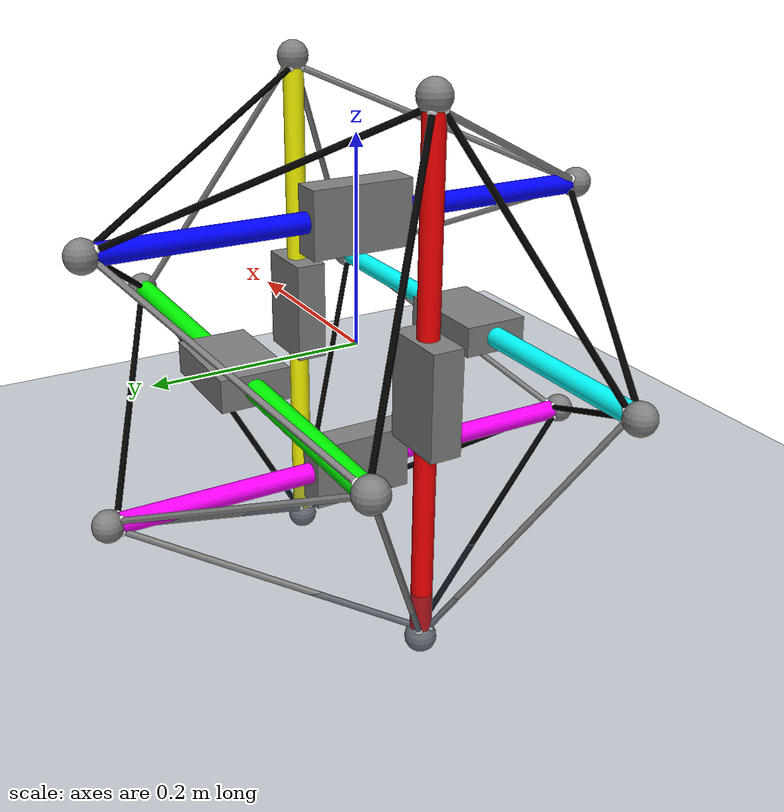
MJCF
<mujoco model="scene">
  <include file="tensegrity_real_model.xml"/>

  <visual>
    <headlight diffuse="0.6 0.6 0.6" ambient="0.5 0.5 0.3" specular="0 0 0"/>
    </visual>

    <asset>
      <texture type="skybox" builtin="gradient" rgb1="0.3 0.5 0.7" rgb2="0.1 0.1 0.1" width="512" height="3072"/>
      <texture type="2d" name="groundplane" builtin="checker" mark="edge" rgb1="0.2 0.3 0.4" rgb2="0.1 0.2 0.3" markrgb="0.8 0.8 0.8" width="300" height="300"/>
      <material name="groundplane" texture="groundplane" texuniform="true" texrepeat="5 5"
        reflectance="0.2"/>
    </asset>

    <worldbody>
      <light pos="0 0 1.5" dir="0 0 -1" directional="true"/>
      <geom name="floor" pos="0 0 -0.2" size="0 0 0.05" type="plane" material="groundplane"/>
    </worldbody>

    <contact>
      <pair geom1="floor" geom2="link1" friction="1.0 1.0"/>
      <pair geom1="floor" geom2="link2" friction="1.0 1.0"/>
      <pair geom1="floor" geom2="link3" friction="1.0 1.0"/>
      <pair geom1="floor" geom2="link4" friction="1.0 1.0"/>
      <pair geom1="floor" geom2="link5" friction="1.0 1.0"/>
      <pair geom1="floor" geom2="link6" friction="1.0 1.0"/>
      <pair geom1="floor" geom2="sphere_1t" friction="1.0 1.0"/>
      <pair geom1="floor" geom2="sphere_1b" friction="1.0 1.0"/>
      <pair geom1="floor" geom2="sphere_2t" friction="1.0 1.0"/>
      <pair geom1="floor" geom2="sphere_2b" friction="1.0 1.0"/>
      <pair geom1="floor" geom2="sphere_3t" friction="1.0 1.0"/>
      <pair geom1="floor" geom2="sphere_3b" friction="1.0 1.0"/>
      <pair geom1="floor" geom2="sphere_4t" friction="1.0 1.0"/>
      <pair geom1="floor" geom2="sphere_4b" friction="1.0 1.0"/>
      <pair geom1="floor" geom2="sphere_5t" friction="1.0 1.0"/>
      <pair geom1="floor" geom2="sphere_5b" friction="1.0 1.0"/>
      <pair geom1="floor" geom2="sphere_6t" friction="1.0 1.0"/>
      <pair geom1="floor" geom2="sphere_6b" friction="1.0 1.0"/>
      <pair geom1="link1" geom2="link2"/>
      <pair geom1="link1" geom2="link3"/>
      <pair geom1="link1" geom2="link4"/>
      <pair geom1="link1" geom2="link5"/>
      <pair geom1="link1" geom2="link6"/>
      <pair geom1="link2" geom2="link3"/>
      <pair geom1="link2" geom2="link4"/>
      <pair geom1="link2" geom2="link5"/>
      <pair geom1="link2" geom2="link6"/>
      <pair geom1="link3" geom2="link4"/>
      <pair geom1="link3" geom2="link5"/>
      <pair geom1="link3" geom2="link6"/>
      <pair geom1="link4" geom2="link5"/>
      <pair geom1="link4" geom2="link6"/>
      <pair geom1="link5" geom2="link6"/>
    </contact>

  </mujoco>

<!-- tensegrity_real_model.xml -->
<mujoco model="tensegrity">
  <option timestep="0.002" collision="predefined"/>
  <default>
    <site size="0.005" rgba="1 1 1 1"/>
    <default class="tendon_actuator">
      <general ctrllimited="true" ctrlrange="-20.0 0" dyntype="filter" dynprm="0.02"/> <!-- for real2sim -->
    </default>
    <default class="tendon_spatial">
      <tendon damping="5" stiffness="50" frictionloss="0.5"/>
    </default>
    <default class="tendon_spatial_static">
      <tendon damping="5" stiffness="100" frictionloss="0.5"/>
    </default>
  </default>
  <worldbody>
    <light pos="0 1 1" dir="0 -1 -1" diffuse="1 1 1"/>

      <!-- link -->
    <body name="link1" pos="-0.125 0 0">
      <geom name="link1" type="cylinder" size="0.01 0.25" mass="0.06" rgba="1 0 0 1" pos="0 0 0"/>
      <geom name="actuator1" type="box" size="0.032 0.015 0.05" mass="0.2" pos="0 0 0"/>
      <geom name="sphere_1t" type="sphere" size="0.015" mass="0.05" pos="0.0 0.0 0.25"/>
      <geom name="sphere_1b" type="sphere" size="0.015" mass="0.05" pos="0.0 0.0 -0.25"/>
      <joint name="link1" type="free"/>
      <site name="link1_top" pos="0 0 0.2"/>
      <site name="link1_top1" pos="0.005 0.005 0.24"/>
      <site name="link1_top2" pos="-0.005 0.005 0.24"/>
      <site name="link1_top3" pos="-0.005 -0.005 0.24"/>
      <site name="link1_top4" pos="0.005 -0.005 0.24"/>
      <site name="link1_bottom1" pos="0.005 0.005 -0.24"/>
      <site name="link1_bottom2" pos="-0.005 0.005 -0.24"/>
      <site name="link1_bottom3" pos="-0.005 -0.005 -0.24"/>
      <site name="link1_bottom4" pos="0.005 -0.005 -0.24"/>
      <site name="imu" pos="0.0 0 0"/>
    </body>

    <body name="link2" pos="0.125 0 0">
      <geom name="link2" type="cylinder" size="0.01 0.25" mass="0.06" rgba="1 1 0 1" pos="0 0 0"/>
        <geom name="actuator2" type="box" size="0.032 0.015 0.05" mass="0.2" pos="0 0 0"/>
        <geom name="sphere_2t" type="sphere" size="0.015" mass="0.05" pos="0.0 0.0 0.25"/>
        <geom name="sphere_2b" type="sphere" size="0.015" mass="0.05" pos="0.0 0.0 -0.25"/>
      <joint name="link2" type="free"/>
      <site name="link2_top1" pos="0.005 0.005 0.24"/>
      <site name="link2_top2" pos="-0.005 0.005 0.24"/>
      <site name="link2_top3" pos="-0.005 -0.005 0.24"/>
      <site name="link2_top4" pos="0.005 -0.005 0.24"/>
      <site name="link2_bottom1" pos="0.005 0.005 -0.24"/>
      <site name="link2_bottom2" pos="-0.005 0.005 -0.24"/>
      <site name="link2_bottom3" pos="-0.005 -0.005 -0.24"/>
      <site name="link2_bottom4" pos="0.005 -0.005 -0.24"/>
    </body>

    <body name="link3" pos="0 0.125 0">
      <geom name="link3" type="cylinder" mass="0.06" rgba="0 1 0 1" fromto="-0.25 0 0 0.25 0 0" size="0.01 0.25"/>
        <geom name="actuator3" type="box" size="0.05 0.032 0.015" mass="0.2" pos="0 0 0"/>
        <geom name="sphere_3t" type="sphere" size="0.015" mass="0.05" pos="0.25 0.0 0.0"/>
        <geom name="sphere_3b" type="sphere" size="0.015" mass="0.05" pos="-0.25 0.0 0.0"/>
      <joint name="link3" type="free"/>
      <site name="link3_top1" pos="0.24 0.005 0.005"/>
      <site name="link3_top2" pos="0.24 -0.005 0.005"/>
      <site name="link3_top3" pos="0.24 -0.005 -0.005"/>
      <site name="link3_top4" pos="0.24 0.005 -0.005"/>
      <site name="link3_bottom1" pos="-0.24 0.005 0.005"/>
      <site name="link3_bottom2" pos="-0.24 -0.005 0.005"/>
      <site name="link3_bottom3" pos="-0.24 -0.005 -0.005"/>
      <site name="link3_bottom4" pos="-0.24 0.005 -0.005"/>
    </body>

    <body name="link4" pos="0 -0.125 0">
      <geom name="link4" type="cylinder" size="0.01 0.25" mass="0.06" rgba="0 1 1 1" fromto="-0.25 0 0 0.25 0 0"/>
        <geom name="actuator4" type="box" size="0.05 0.032 0.015" mass="0.2" pos="0 0 0"/>
        <geom name="sphere_4t" type="sphere" size="0.015" mass="0.05" pos="0.25 0.0 0.0"/>
        <geom name="sphere_4b" type="sphere" size="0.015" mass="0.05" pos="-0.25 0.0 0.0"/>
      <joint name="link4" type="free"/>
      <site name="link4_top1" pos="0.24 0.005 0.005"/>
      <site name="link4_top2" pos="0.24 -0.005 0.005"/>
      <site name="link4_top3" pos="0.24 -0.005 -0.005"/>
      <site name="link4_top4" pos="0.24 0.005 -0.005"/>
      <site name="link4_bottom1" pos="-0.24 0.005 0.005"/>
      <site name="link4_bottom2" pos="-0.24 -0.005 0.005"/>
      <site name="link4_bottom3" pos="-0.24 -0.005 -0.005"/>
      <site name="link4_bottom4" pos="-0.24 0.005 -0.005"/>
    </body>

    <body name="link5" pos="0 0 0.125">
      <geom name="link5" type="cylinder" size="0.01 0.25" mass="0.06" rgba="0 0 1 1" fromto="0 -0.25 0 0 0.25 0"/>
        <geom name="actuator5" type="box" size="0.015 0.05 0.032" mass="0.2" pos="0 0 0"/>
        <geom name="sphere_5t" type="sphere" size="0.015" mass="0.05" pos="0.0 0.25 0.0"/>
        <geom name="sphere_5b" type="sphere" size="0.015" mass="0.05" pos="0.0 -0.25 0.0"/>
      <joint name="link5" type="free"/>
      <site name="link5_top1" pos="0.005 0.24 0.005"/>
      <site name="link5_top2" pos="0.005 0.24 -0.005"/>
      <site name="link5_top3" pos="-0.005 0.24 -0.005"/>
      <site name="link5_top4" pos="-0.005 0.24 0.005"/>
      <site name="link5_bottom1" pos="0.005 -0.24 0.005"/>
      <site name="link5_bottom2" pos="0.005 -0.24 -0.005"/>
      <site name="link5_bottom3" pos="-0.005 -0.24 -0.005"/>
      <site name="link5_bottom4" pos="-0.005 -0.24 0.005"/>
    </body>

    <body name="link6" pos="0 0 -0.125">
      <geom name="link6" type="cylinder" size="0.01 0.25" mass="0.1" rgba="1 0 1 1" fromto="0 -0.25 0 0 0.25 0"/>
      <geom name="actuator6" type="box" size="0.015 0.05 0.032" mass="0.2" pos="0 0 0"/>
      <geom name="sphere_6t" type="sphere" size="0.015" mass="0.05" pos="0.0 0.25 0.0"/>
      <geom name="sphere_6b" type="sphere" size="0.015" mass="0.05" pos="0.0 -0.25 0.0"/>
      <joint name="link6" type="free"/>
      <site name="link6_top" pos="0.0 0.24 0.0"/>
      <site name="link6_top1" pos="0.005 0.24 0.005"/>
      <site name="link6_top2" pos="0.005 0.24 -0.005"/>
      <site name="link6_top3" pos="-0.005 0.24 -0.005"/>
      <site name="link6_top4" pos="-0.005 0.24 0.005"/>
      <site name="link6_bottom" pos="0.0 -0.24 0.0"/>
      <site name="link6_bottom1" pos="0.005 -0.24 0.005"/>
      <site name="link6_bottom2" pos="0.005 -0.24 -0.005"/>
      <site name="link6_bottom3" pos="-0.005 -0.24 -0.005"/>
      <site name="link6_bottom4" pos="-0.005 -0.24 0.005"/>
    </body>

  </worldbody>

  <tendon>
    <!-- link1 -->
    <spatial name="link1t_3b" class="tendon_spatial" rgba="0 0 0 1">
      <site site="link1_top2"/>
      <site site="link3_bottom2"/>
    </spatial>
    <spatial name="link1t_4b" class="tendon_spatial" rgba="0 0 0 1">
      <site site="link1_top3"/>
      <site site="link4_bottom1"/>
    </spatial>
    <spatial name="link1b_3b" class="tendon_spatial_static">
      <site site="link1_bottom2"/>
      <site site="link3_bottom3"/>
    </spatial>
    <spatial name="link1b_4b" class="tendon_spatial_static">
      <site site="link1_bottom3"/>
      <site site="link4_bottom4"/>
    </spatial>
    <spatial name="link1b_6t" class="tendon_spatial_static">
      <site site="link1_bottom1"/>
      <site site="link6_top3"/>
    </spatial>
    <spatial name="link1b_6b" class="tendon_spatial" rgba="0 0 0 1">
      <site site="link1_bottom4"/>
      <site site="link6_bottom3"/>
    </spatial>
    <spatial name="link1t_5t" class="tendon_spatial" rgba="0 0 0 1">
      <site site="link1_top1"/>
      <site site="link5_top4"/>
    </spatial>
    <spatial name="link1t_5b" class="tendon_spatial_static">
      <site site="link1_top4"/>
      <site site="link5_bottom4"/>
    </spatial>

    <!-- link2 -->
    <spatial name="link2t_3t" class="tendon_spatial_static">
      <site site="link2_top1"/>
      <site site="link3_top2"/>
    </spatial>
    <spatial name="link2t_4t" class="tendon_spatial_static">
      <site site="link2_top4"/>
      <site site="link4_top1"/>
    </spatial>
    <spatial name="link2b_3t" class="tendon_spatial" rgba="0 0 0 1">
      <site site="link2_bottom1"/>
      <site site="link3_top3"/>
    </spatial>
    <spatial name="link2b_4t" class="tendon_spatial" rgba="0 0 0 1">
      <site site="link2_bottom4"/>
      <site site="link4_top4"/>
    </spatial>
    <spatial name="link2b_6t" class="tendon_spatial_static">
      <site site="link2_bottom2"/>
      <site site="link6_top2"/>
    </spatial>
    <spatial name="link2b_6b" class="tendon_spatial" rgba="0 0 0 1">
      <site site="link2_bottom3"/>
      <site site="link6_bottom2"/>
    </spatial>
    <spatial name="link2t_5t" class="tendon_spatial" rgba="0 0 0 1">
      <site site="link2_top2"/>
      <site site="link5_top1"/>
    </spatial>
    <spatial name="link2t_5b" class="tendon_spatial_static">
      <site site="link2_top3"/>
      <site site="link5_bottom1"/>
    </spatial>

    <!-- link3 -->
    <spatial name="link3t_5t" class="tendon_spatial" rgba="0 0 0 1">
      <site site="link3_top1"/>
      <site site="link5_top2"/>
    </spatial>
    <spatial name="link3b_5t" class="tendon_spatial_static">
      <site site="link3_bottom1"/>
      <site site="link5_top3"/>
    </spatial>
    <spatial name="link3t_6t" class="tendon_spatial" rgba="0 0 0 1">
      <site site="link3_top4"/>
      <site site="link6_top1"/>
    </spatial>
    <spatial name="link3b_6t" class="tendon_spatial_static">
      <site site="link3_bottom4"/>
      <site site="link6_top4"/>
    </spatial>

    <!-- link4 -->
    <spatial name="link4t_5b" class="tendon_spatial_static">
      <site site="link4_top2"/>
      <site site="link5_bottom2"/>
    </spatial>
    <spatial name="link4b_5b" class="tendon_spatial" rgba="0 0 0 1">
      <site site="link4_bottom2"/>
      <site site="link5_bottom3"/>
    </spatial>
    <spatial name="link4t_6b" class="tendon_spatial_static">
      <site site="link4_top3"/>
      <site site="link6_bottom1"/>
    </spatial>
    <spatial name="link4b_6b" class="tendon_spatial" rgba="0 0 0 1">
      <site site="link4_bottom3"/>
      <site site="link6_bottom4"/>
    </spatial>
  </tendon>

  <actuator>
    <!-- tention-controlled actuators-->
    <general name="link1t_3b" tendon="link1t_3b"  class="tendon_actuator"/>
    <general name="link1b_4b" tendon="link1t_4b"  class="tendon_actuator"/>
    <general name="link1b_6t" tendon="link1b_6b"  class="tendon_actuator"/>
    <general name="link1t_5b" tendon="link1t_5t"  class="tendon_actuator"/>
    <general name="link2t_4t" tendon="link2b_4t"  class="tendon_actuator"/>
    <general name="link2b_3t" tendon="link2b_3t"  class="tendon_actuator"/>
    <general name="link2b_6b" tendon="link2b_6b"  class="tendon_actuator"/>
    <general name="link2t_5t" tendon="link2t_5t"  class="tendon_actuator"/>
    <general name="link3b_5t" tendon="link3t_5t"  class="tendon_actuator"/>
    <general name="link3t_6t" tendon="link3t_6t"  class="tendon_actuator"/>
    <general name="link4b_5b" tendon="link4b_5b"  class="tendon_actuator"/>
    <general name="link4t_6b" tendon="link4b_6b"  class="tendon_actuator"/>

  </actuator>

  <sensor>
  </sensor>

</mujoco>
